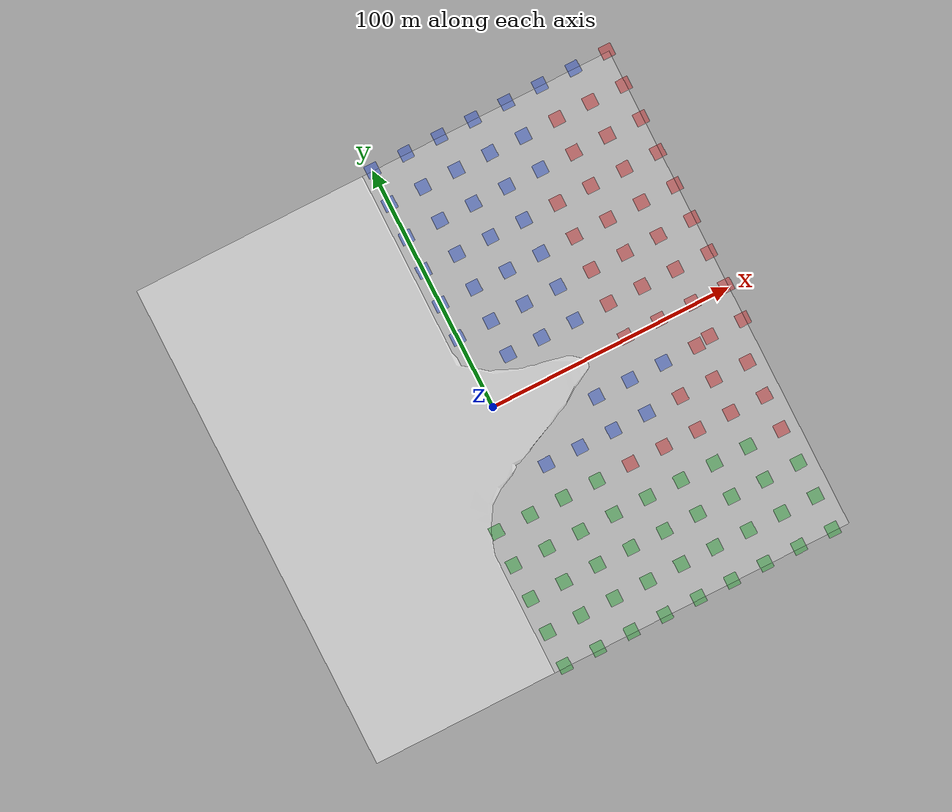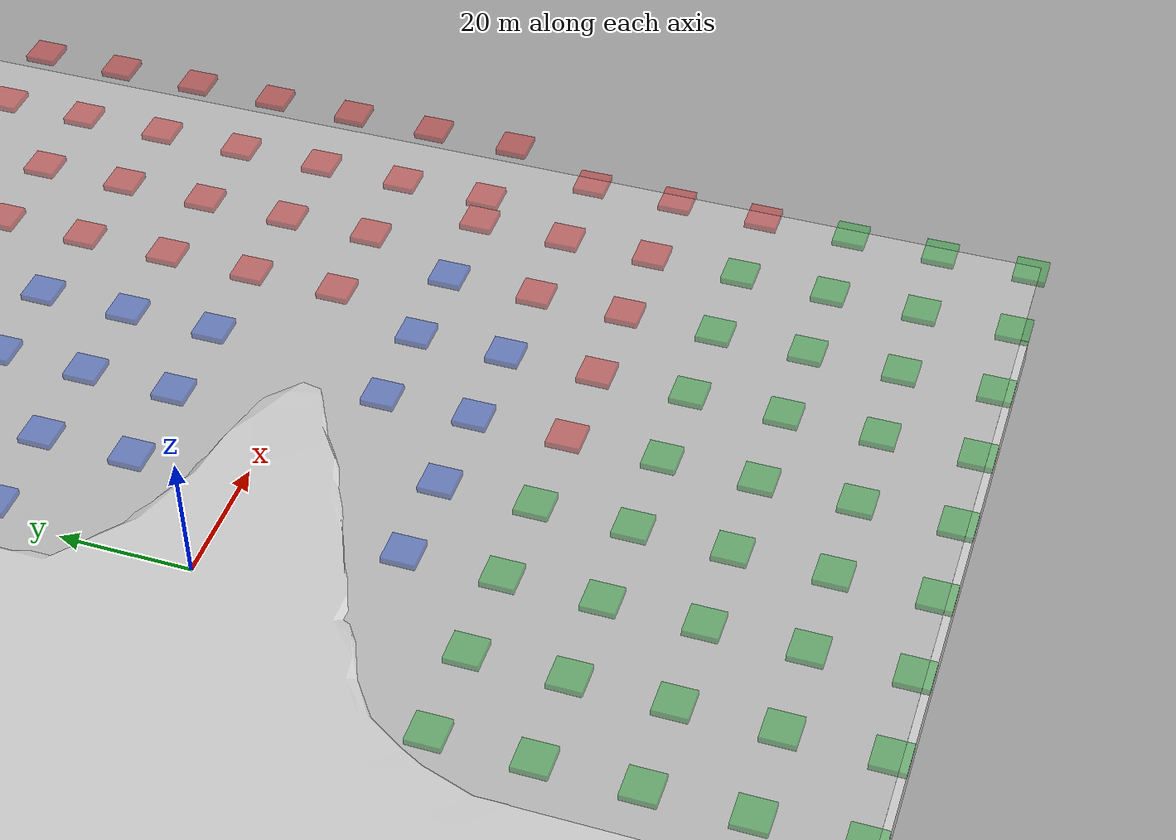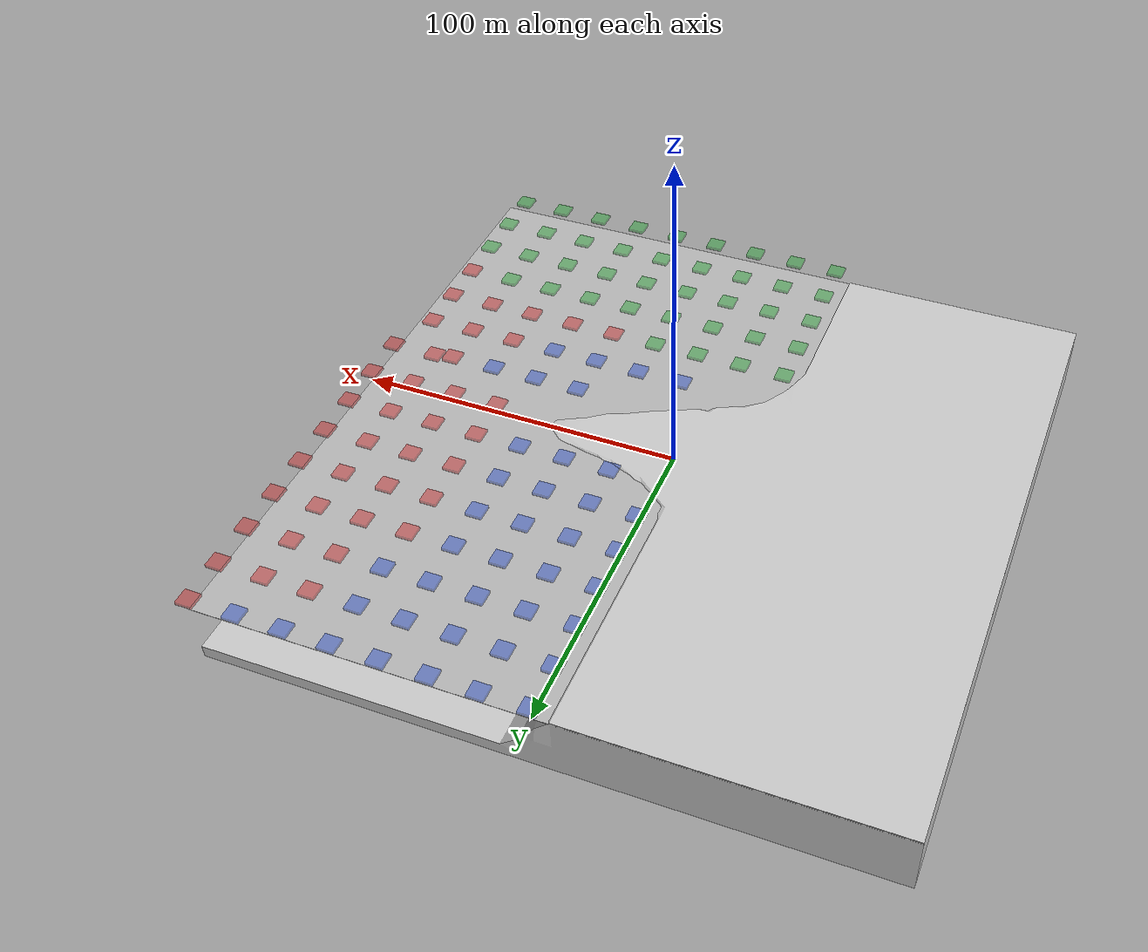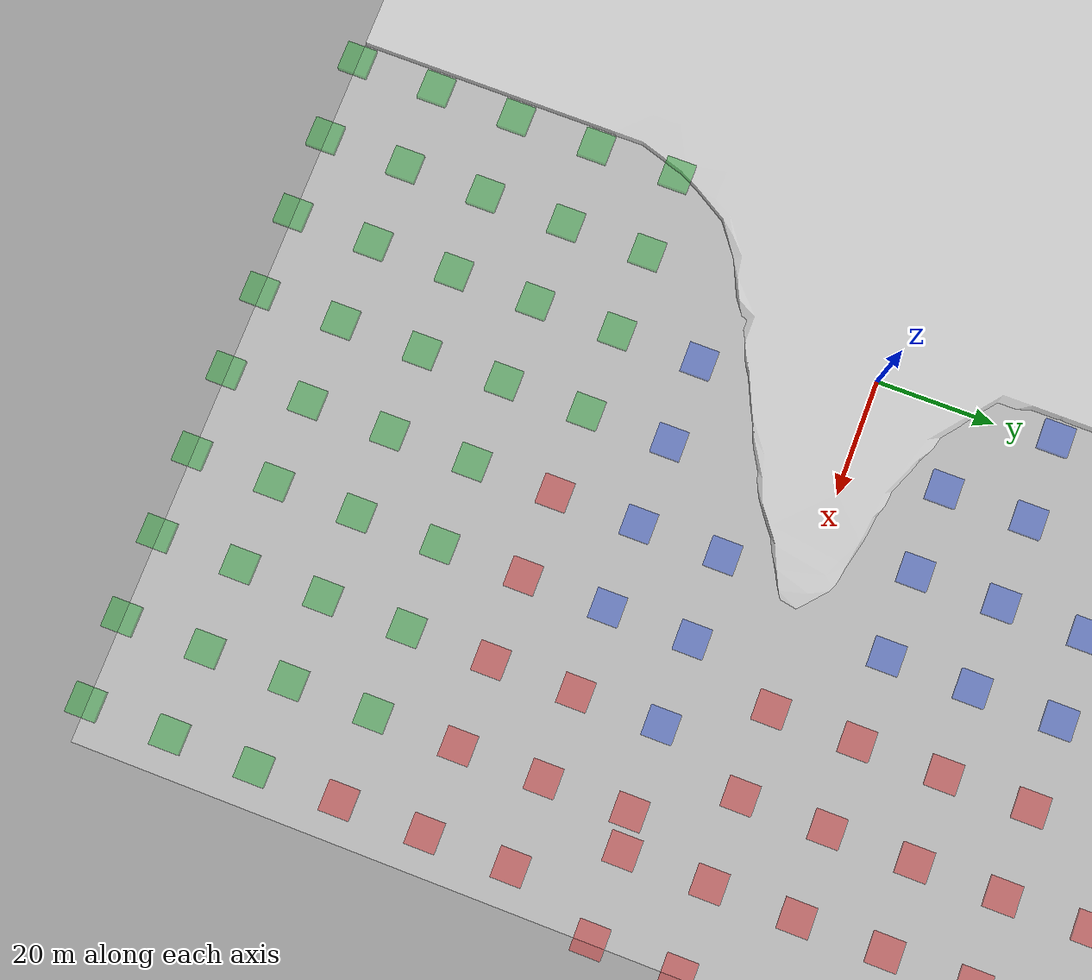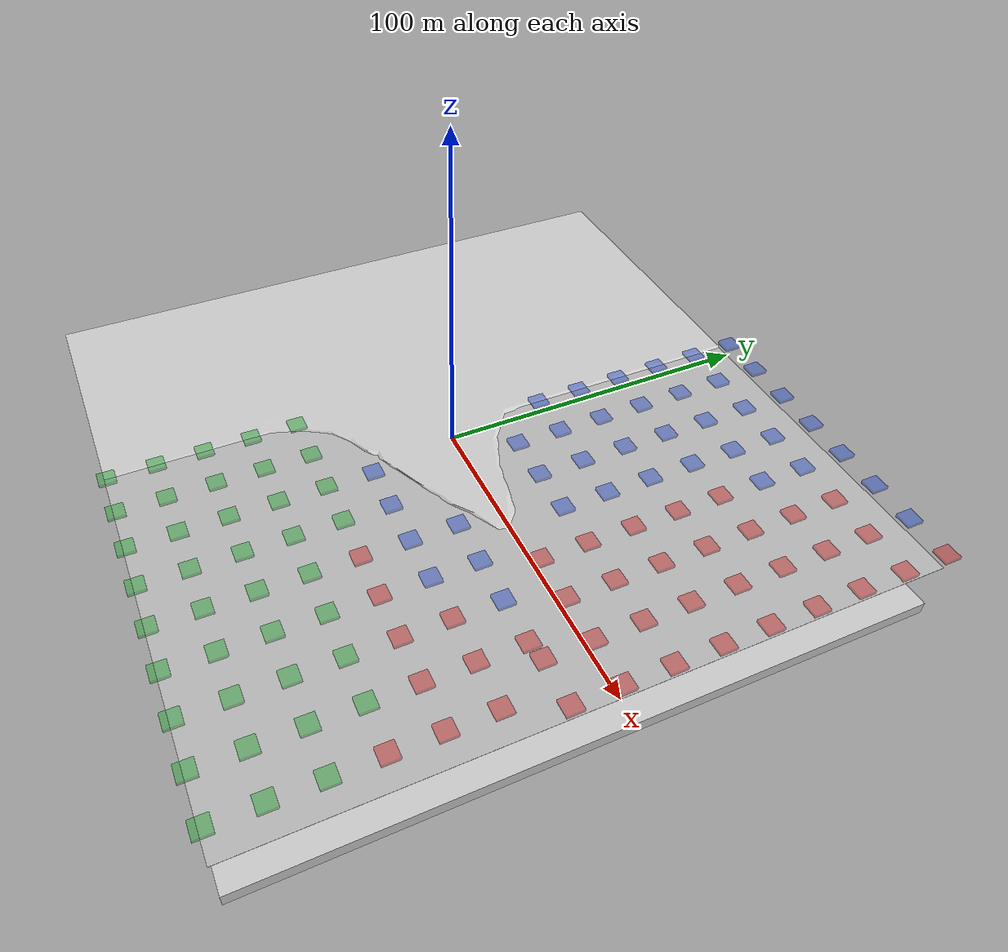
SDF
<?xml version="1.0"?>
<sdf version="1.5">
  <world name="default">
    <include>
      <uri>model://sun</uri>
    </include>
    <include>
      <uri>model://smooth</uri>
      <pose>0 0 0 0 0 0</pose>
    </include>
    <include>
          <name>rect area 1</name>
          <uri>model://rect_1</uri>
          <pose>93.14 -42.43 4 0 0 0</pose>
        </include>
        <include>
          <name>rect area 2</name>
          <uri>model://rect_2</uri>
          <pose>28.28 71.72 4 0 0 0</pose>
        </include>
        <include>
          <name>rect area 3</name>
          <uri>model://rect_3</uri>
          <pose>78.99 -56.57 4 0 0 0</pose>
        </include>
        <include>
          <name>rect area 4</name>
          <uri>model://rect_1</uri>
          <pose>78.99 -28.28 4 0 0 0</pose>
        </include>
        <include>
          <name>rect area 5</name>
          <uri>model://rect_2</uri>
          <pose>42.43 71.72 4 0 0 0</pose>
        </include>
        <include>
          <name>rect area 6</name>
          <uri>model://rect_3</uri>
          <pose>78.99 -70.71 4 0 0 0</pose>
        </include>
        <include>
          <name>rect area 7</name>
          <uri>model://rect_1</uri>
          <pose>78.99 -42.43 4 0 0 0</pose>
        </include>
        <include>
          <name>rect area 8</name>
          <uri>model://rect_2</uri>
          <pose>28.28 85.86 4 0 0 0</pose>
        </include>
        <include>
          <name>rect area 9</name>
          <uri>model://rect_3</uri>
          <pose>93.14 -70.71 4 0 0 0</pose>
        </include>
        <include>
          <name>rect area 10</name>
          <uri>model://rect_1</uri>
          <pose>93.14 -28.28 4 0 0 0</pose>
        </include>
        <include>
          <name>rect area 11</name>
          <uri>model://rect_2</uri>
          <pose>28.28 100.00 4 0 0 0</pose>
        </include>
        <include>
          <name>rect area 12</name>
          <uri>model://rect_3</uri>
          <pose>93.14 -84.85 4 0 0 0</pose>
        </include>
        <include>
          <name>rect area 13</name>
          <uri>model://rect_1</uri>
          <pose>93.14 -56.57 4 0 0 0</pose>
        </include>
        <include>
          <name>rect area 14</name>
          <uri>model://rect_2</uri>
          <pose>0.00 100.00 4 0 0 0</pose>
        </include>
        <include>
          <name>rect area 15</name>
          <uri>model://rect_3</uri>
          <pose>93.14 -98.99 4 0 0 0</pose>
        </include>
        <include>
          <name>rect area 16</name>
          <uri>model://rect_1</uri>
          <pose>64.85 -28.28 4 0 0 0</pose>
        </include>
        <include>
          <name>rect area 17</name>
          <uri>model://rect_2</uri>
          <pose>14.14 100.00 4 0 0 0</pose>
        </include>
        <include>
          <name>rect area 18</name>
          <uri>model://rect_3</uri>
          <pose>64.85 -84.85 4 0 0 0</pose>
        </include>
        <include>
          <name>rect area 19</name>
          <uri>model://rect_1</uri>
          <pose>64.85 -42.43 4 0 0 0</pose>
        </include>
        <include>
          <name>rect area 20</name>
          <uri>model://rect_2</uri>
          <pose>14.14 85.86 4 0 0 0</pose>
        </include>
        <include>
          <name>rect area 21</name>
          <uri>model://rect_3</uri>
          <pose>64.85 -98.99 4 0 0 0</pose>
        </include>
        <include>
          <name>rect area 22</name>
          <uri>model://rect_1</uri>
          <pose>36.57 -42.43 4 0 0 0</pose>
        </include>
        <include>
          <name>rect area 23</name>
          <uri>model://rect_2</uri>
          <pose>14.14 71.72 4 0 0 0</pose>
        </include>
        <include>
          <name>rect area 24</name>
          <uri>model://rect_3</uri>
          <pose>78.99 -98.99 4 0 0 0</pose>
        </include>
        <include>
          <name>rect area 25</name>
          <uri>model://rect_1</uri>
          <pose>50.71 -42.43 4 0 0 0</pose>
        </include>
        <include>
          <name>rect area 26</name>
          <uri>model://rect_2</uri>
          <pose>0.00 71.72 4 0 0 0</pose>
        </include>
        <include>
          <name>rect area 27</name>
          <uri>model://rect_3</uri>
          <pose>78.99 -84.85 4 0 0 0</pose>
        </include>
        <include>
          <name>rect area 28</name>
          <uri>model://rect_1</uri>
          <pose>56.57 1.01 4 0 0 0</pose>
        </include>
        <include>
          <name>rect area 29</name>
          <uri>model://rect_2</uri>
          <pose>0.00 85.86 4 0 0 0</pose>
        </include>
        <include>
          <name>rect area 30</name>
          <uri>model://rect_3</uri>
          <pose>50.71 -84.85 4 0 0 0</pose>
        </include>
        <include>
          <name>rect area 31</name>
          <uri>model://rect_1</uri>
          <pose>56.57 15.15 4 0 0 0</pose>
        </include>
        <include>
          <name>rect area 32</name>
          <uri>model://rect_2</uri>
          <pose>0.00 57.57 4 0 0 0</pose>
        </include>
        <include>
          <name>rect area 33</name>
          <uri>model://rect_3</uri>
          <pose>64.85 -70.71 4 0 0 0</pose>
        </include>
        <include>
          <name>rect area 34</name>
          <uri>model://rect_1</uri>
          <pose>70.71 1.01 4 0 0 0</pose>
        </include>
        <include>
          <name>rect area 35</name>
          <uri>model://rect_2</uri>
          <pose>0.00 43.43 4 0 0 0</pose>
        </include>
        <include>
          <name>rect area 36</name>
          <uri>model://rect_3</uri>
          <pose>36.57 -84.85 4 0 0 0</pose>
        </include>
        <include>
          <name>rect area 37</name>
          <uri>model://rect_1</uri>
          <pose>70.71 29.29 4 0 0 0</pose>
        </include>
        <include>
          <name>rect area 38</name>
          <uri>model://rect_2</uri>
          <pose>14.14 57.57 4 0 0 0</pose>
        </include>
        <include>
          <name>rect area 39</name>
          <uri>model://rect_3</uri>
          <pose>36.57 -98.99 4 0 0 0</pose>
        </include>
        <include>
          <name>rect area 40</name>
          <uri>model://rect_1</uri>
          <pose>70.71 15.15 4 0 0 0</pose>
        </include>
        <include>
          <name>rect area 41</name>
          <uri>model://rect_2</uri>
          <pose>14.14 43.43 4 0 0 0</pose>
        </include>
        <include>
          <name>rect area 42</name>
          <uri>model://rect_3</uri>
          <pose>50.71 -98.99 4 0 0 0</pose>
        </include>
        <include>
          <name>rect area 43</name>
          <uri>model://rect_1</uri>
          <pose>84.85 15.15 4 0 0 0</pose>
        </include>
        <include>
          <name>rect area 44</name>
          <uri>model://rect_2</uri>
          <pose>28.28 43.43 4 0 0 0</pose>
        </include>
        <include>
          <name>rect area 45</name>
          <uri>model://rect_3</uri>
          <pose>36.57 -70.71 4 0 0 0</pose>
        </include>
        <include>
          <name>rect area 46</name>
          <uri>model://rect_1</uri>
          <pose>84.85 29.29 4 0 0 0</pose>
        </include>
        <include>
          <name>rect area 47</name>
          <uri>model://rect_2</uri>
          <pose>28.28 57.57 4 0 0 0</pose>
        </include>
        <include>
          <name>rect area 48</name>
          <uri>model://rect_3</uri>
          <pose>22.43 -70.71 4 0 0 0</pose>
        </include>
        <include>
          <name>rect area 49</name>
          <uri>model://rect_1</uri>
          <pose>70.71 57.57 4 0 0 0</pose>
        </include>
        <include>
          <name>rect area 50</name>
          <uri>model://rect_2</uri>
          <pose>14.14 29.29 4 0 0 0</pose>
        </include>
        <include>
          <name>rect area 51</name>
          <uri>model://rect_3</uri>
          <pose>22.43 -84.85 4 0 0 0</pose>
        </include>
        <include>
          <name>rect area 52</name>
          <uri>model://rect_1</uri>
          <pose>70.71 43.43 4 0 0 0</pose>
        </include>
        <include>
          <name>rect area 53</name>
          <uri>model://rect_2</uri>
          <pose>28.28 29.29 4 0 0 0</pose>
        </include>
        <include>
          <name>rect area 54</name>
          <uri>model://rect_3</uri>
          <pose>22.43 -98.99 4 0 0 0</pose>
        </include>
        <include>
          <name>rect area 55</name>
          <uri>model://rect_1</uri>
          <pose>84.85 43.43 4 0 0 0</pose>
        </include>
        <include>
          <name>rect area 56</name>
          <uri>model://rect_2</uri>
          <pose>0.00 29.29 4 0 0 0</pose>
        </include>
        <include>
          <name>rect area 57</name>
          <uri>model://rect_3</uri>
          <pose>8.28 -84.85 4 0 0 0</pose>
        </include>
        <include>
          <name>rect area 58</name>
          <uri>model://rect_1</uri>
          <pose>56.57 29.29 4 0 0 0</pose>
        </include>
        <include>
          <name>rect area 59</name>
          <uri>model://rect_2</uri>
          <pose>14.14 15.15 4 0 0 0</pose>
        </include>
        <include>
          <name>rect area 60</name>
          <uri>model://rect_3</uri>
          <pose>8.28 -98.99 4 0 0 0</pose>
        </include>
        <include>
          <name>rect area 61</name>
          <uri>model://rect_1</uri>
          <pose>56.57 57.57 4 0 0 0</pose>
        </include>
        <include>
          <name>rect area 62</name>
          <uri>model://rect_2</uri>
          <pose>28.28 15.15 4 0 0 0</pose>
        </include>
        <include>
          <name>rect area 63</name>
          <uri>model://rect_3</uri>
          <pose>-20.00 -84.85 4 0 0 0</pose>
        </include>
        <include>
          <name>rect area 64</name>
          <uri>model://rect_1</uri>
          <pose>56.57 43.43 4 0 0 0</pose>
        </include>
        <include>
          <name>rect area 65</name>
          <uri>model://rect_2</uri>
          <pose>36.57 -14.14 4 0 0 0</pose>
        </include>
        <include>
          <name>rect area 66</name>
          <uri>model://rect_3</uri>
          <pose>-20.00 -98.99 4 0 0 0</pose>
        </include>
        <include>
          <name>rect area 67</name>
          <uri>model://rect_1</uri>
          <pose>70.71 71.72 4 0 0 0</pose>
        </include>
        <include>
          <name>rect area 68</name>
          <uri>model://rect_2</uri>
          <pose>8.28 -28.28 4 0 0 0</pose>
        </include>
        <include>
          <name>rect area 69</name>
          <uri>model://rect_3</uri>
          <pose>-5.86 -98.99 4 0 0 0</pose>
        </include>
        <include>
          <name>rect area 70</name>
          <uri>model://rect_1</uri>
          <pose>70.71 85.86 4 0 0 0</pose>
        </include>
        <include>
          <name>rect area 71</name>
          <uri>model://rect_2</uri>
          <pose>22.43 -28.28 4 0 0 0</pose>
        </include>
        <include>
          <name>rect area 72</name>
          <uri>model://rect_3</uri>
          <pose>-5.86 -84.85 4 0 0 0</pose>
        </include>
        <include>
          <name>rect area 73</name>
          <uri>model://rect_1</uri>
          <pose>98.99 85.86 4 0 0 0</pose>
        </include>
        <include>
          <name>rect area 74</name>
          <uri>model://rect_2</uri>
          <pose>36.57 -28.28 4 0 0 0</pose>
        </include>
        <include>
          <name>rect area 75</name>
          <uri>model://rect_3</uri>
          <pose>-20.00 -70.71 4 0 0 0</pose>
        </include>
        <include>
          <name>rect area 76</name>
          <uri>model://rect_1</uri>
          <pose>98.99 100.00 4 0 0 0</pose>
        </include>
        <include>
          <name>rect area 77</name>
          <uri>model://rect_2</uri>
          <pose>50.71 -14.14 4 0 0 0</pose>
        </include>
        <include>
          <name>rect area 78</name>
          <uri>model://rect_3</uri>
          <pose>-5.86 -70.71 4 0 0 0</pose>
        </include>
        <include>
          <name>rect area 79</name>
          <uri>model://rect_1</uri>
          <pose>84.85 57.57 4 0 0 0</pose>
        </include>
        <include>
          <name>rect area 80</name>
          <uri>model://rect_2</uri>
          <pose>50.71 -28.28 4 0 0 0</pose>
        </include>
        <include>
          <name>rect area 81</name>
          <uri>model://rect_3</uri>
          <pose>8.28 -70.71 4 0 0 0</pose>
        </include>
        <include>
          <name>rect area 82</name>
          <uri>model://rect_1</uri>
          <pose>84.85 71.72 4 0 0 0</pose>
        </include>
        <include>
          <name>rect area 83</name>
          <uri>model://rect_2</uri>
          <pose>64.85 -14.14 4 0 0 0</pose>
        </include>
        <include>
          <name>rect area 84</name>
          <uri>model://rect_3</uri>
          <pose>-5.86 -56.57 4 0 0 0</pose>
        </include>
        <include>
          <name>rect area 85</name>
          <uri>model://rect_1</uri>
          <pose>84.85 85.86 4 0 0 0</pose>
        </include>
        <include>
          <name>rect area 86</name>
          <uri>model://rect_2</uri>
          <pose>42.43 43.43 4 0 0 0</pose>
        </include>
        <include>
          <name>rect area 87</name>
          <uri>model://rect_3</uri>
          <pose>-20.00 -42.43 4 0 0 0</pose>
        </include>
        <include>
          <name>rect area 88</name>
          <uri>model://rect_1</uri>
          <pose>98.99 71.72 4 0 0 0</pose>
        </include>
        <include>
          <name>rect area 89</name>
          <uri>model://rect_2</uri>
          <pose>42.43 29.29 4 0 0 0</pose>
        </include>
        <include>
          <name>rect area 90</name>
          <uri>model://rect_3</uri>
          <pose>-20.00 -56.57 4 0 0 0</pose>
        </include>
        <include>
          <name>rect area 91</name>
          <uri>model://rect_1</uri>
          <pose>98.99 57.57 4 0 0 0</pose>
        </include>
        <include>
          <name>rect area 92</name>
          <uri>model://rect_2</uri>
          <pose>42.43 15.15 4 0 0 0</pose>
        </include>
        <include>
          <name>rect area 93</name>
          <uri>model://rect_3</uri>
          <pose>-5.86 -42.43 4 0 0 0</pose>
        </include>
        <include>
          <name>rect area 94</name>
          <uri>model://rect_1</uri>
          <pose>98.99 43.43 4 0 0 0</pose>
        </include>
        <include>
          <name>rect area 95</name>
          <uri>model://rect_2</uri>
          <pose>42.43 57.57 4 0 0 0</pose>
        </include>
        <include>
          <name>rect area 96</name>
          <uri>model://rect_3</uri>
          <pose>8.28 -42.43 4 0 0 0</pose>
        </include>
        <include>
          <name>rect area 97</name>
          <uri>model://rect_1</uri>
          <pose>98.99 29.29 4 0 0 0</pose>
        </include>
        <include>
          <name>rect area 98</name>
          <uri>model://rect_2</uri>
          <pose>56.57 71.72 4 0 0 0</pose>
        </include>
        <include>
          <name>rect area 99</name>
          <uri>model://rect_3</uri>
          <pose>8.28 -56.57 4 0 0 0</pose>
        </include>
        <include>
          <name>rect area 100</name>
          <uri>model://rect_1</uri>
          <pose>98.99 15.15 4 0 0 0</pose>
        </include>
        <include>
          <name>rect area 101</name>
          <uri>model://rect_2</uri>
          <pose>70.71 100.00 4 0 0 0</pose>
        </include>
        <include>
          <name>rect area 102</name>
          <uri>model://rect_3</uri>
          <pose>22.43 -56.57 4 0 0 0</pose>
        </include>
        <include>
          <name>rect area 103</name>
          <uri>model://rect_1</uri>
          <pose>98.99 1.01 4 0 0 0</pose>
        </include>
        <include>
          <name>rect area 104</name>
          <uri>model://rect_2</uri>
          <pose>84.85 100.00 4 0 0 0</pose>
        </include>
        <include>
          <name>rect area 105</name>
          <uri>model://rect_3</uri>
          <pose>22.43 -42.43 4 0 0 0</pose>
        </include>
        <include>
          <name>rect area 106</name>
          <uri>model://rect_1</uri>
          <pose>78.99 -14.14 4 0 0 0</pose>
        </include>
        <include>
          <name>rect area 107</name>
          <uri>model://rect_2</uri>
          <pose>42.43 85.86 4 0 0 0</pose>
        </include>
        <include>
          <name>rect area 108</name>
          <uri>model://rect_3</uri>
          <pose>36.57 -56.57 4 0 0 0</pose>
        </include>
        <include>
          <name>rect area 109</name>
          <uri>model://rect_1</uri>
          <pose>84.85 -13.14 4 0 0 0</pose>
        </include>
        <include>
          <name>rect area 110</name>
          <uri>model://rect_2</uri>
          <pose>42.43 100.00 4 0 0 0</pose>
        </include>
        <include>
          <name>rect area 111</name>
          <uri>model://rect_3</uri>
          <pose>50.71 -56.57 4 0 0 0</pose>
        </include>
        <include>
          <name>rect area 112</name>
          <uri>model://rect_1</uri>
          <pose>84.85 1.01 4 0 0 0</pose>
        </include>
        <include>
          <name>rect area 113</name>
          <uri>model://rect_2</uri>
          <pose>56.57 100.00 4 0 0 0</pose>
        </include>
        <include>
          <name>rect area 114</name>
          <uri>model://rect_3</uri>
          <pose>50.71 -70.71 4 0 0 0</pose>
        </include>
        <include>
          <name>rect area 115</name>
          <uri>model://rect_1</uri>
          <pose>98.99 -13.14 4 0 0 0</pose>
        </include>
        <include>
          <name>rect area 116</name>
          <uri>model://rect_2</uri>
          <pose>56.57 85.86 4 0 0 0</pose>
        </include>
        <include>
          <name>rect area 117</name>
          <uri>model://rect_3</uri>
          <pose>64.85 -56.57 4 0 0 0</pose>
        </include>
        <spherical_coordinates>
      <surface_model>EARTH_WGS84</surface_model>
      <latitude_deg>43.81678595809796</latitude_deg>
      <longitude_deg>28.581366799068558</longitude_deg>
      <elevation>1.7</elevation>
    </spherical_coordinates>
  </world>
</sdf>

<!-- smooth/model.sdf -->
<sdf version="1.5">
  <model name="model">
      <pose>0 0 0  0 0 0</pose>
      <static>true</static>
      <link name="body">
        <collision name="seabed">
          <pose>0 0 -5.5 0 0 -1.57079632679</pose>
          <geometry>
            <mesh><uri>model://smooth/meshes/av4vai_world.dae</uri></mesh>
          </geometry>
          <material>
            <script>
              <uri>model://smooth/materials/scripts/sand.material</uri>
              <name>UUVSimulator/SandAndStones</name>
            </script>
          </material>
        </collision>

        <visual name="seabed">
          <pose>0 0 -5.5 0 0 -1.57079632679</pose>
          <geometry>
            <mesh><uri>model://smooth/meshes/av4vai_world.dae</uri></mesh>
          </geometry>
          <material>
            <script>
              <uri>model://smooth/materials/scripts/sand.material</uri>
              <name>UUVSimulator/SandAndStones</name>
            </script>
          </material>
        </visual>
        <visual name="surface">
          <pose>0 0 0 0 0 0</pose>
          <geometry>
            <box>
              <size>200 200 .1</size>
            </box>
          </geometry>
          <material>
            <script>
              <uri>model://smooth/materials/scripts/water.material</uri>
              <name>UUVSimulator/StaticWater</name>
            </script>
          </material>
        </visual>
      </link>
    </model>
</sdf>

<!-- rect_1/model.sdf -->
<sdf version="1.5">
  <model name="rect_1">
    <static>true</static>
    <link name="link">
      <visual name="visual">
        <pose>0 0 0.5 0 0 0</pose>
        <geometry>
          <box>
            <size>5 5 1</size>
          </box>
	</geometry>
	<material>
          <script>
            <name>Gazebo/RedTransparent</name>
            <uri>file://media/materials/scripts/gazebo.material</uri>
          </script>
        </material>
      </visual>
    </link>
  </model>
</sdf>

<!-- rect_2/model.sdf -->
<sdf version="1.5">
  <model name="rect_2">
    <static>true</static>
    <link name="link">
      <visual name="visual">
        <pose>0 0 0.5 0 0 0</pose>
        <geometry>
          <box>
            <size>5 5 1</size>
          </box>
	</geometry>
	<material>
          <script>
            <name>Gazebo/BlueTransparent</name>
            <uri>file://media/materials/scripts/gazebo.material</uri>
          </script>
        </material>
      </visual>
    </link>
  </model>
</sdf>

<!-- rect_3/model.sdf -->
<sdf version="1.5">
  <model name="rect_3">
    <static>true</static>
    <link name="link">
      <visual name="visual">
        <pose>0 0 0.5 0 0 0</pose>
        <geometry>
          <box>
            <size>5 5 1</size>
          </box>
	</geometry>
	<material>
          <script>
            <name>Gazebo/GreenTransparent</name>
            <uri>file://media/materials/scripts/gazebo.material</uri>
          </script>
        </material>
      </visual>
    </link>
  </model>
</sdf>
